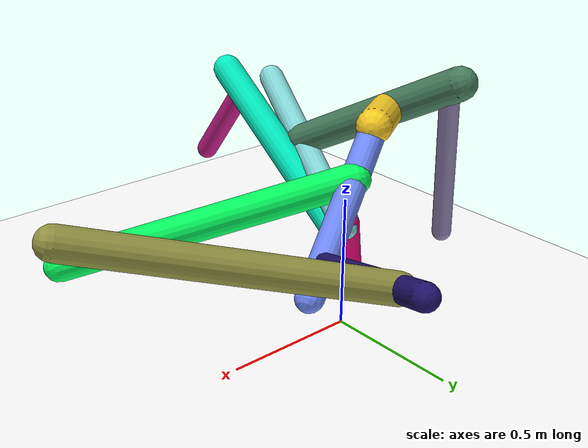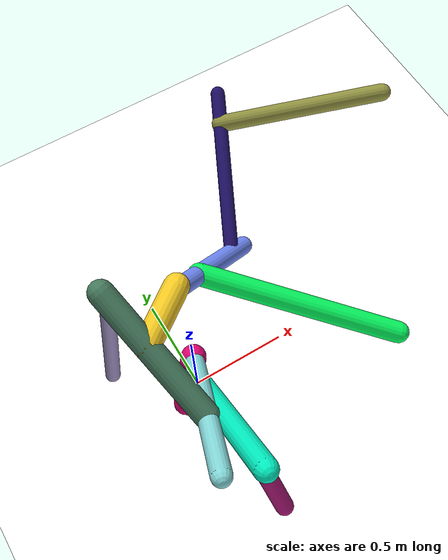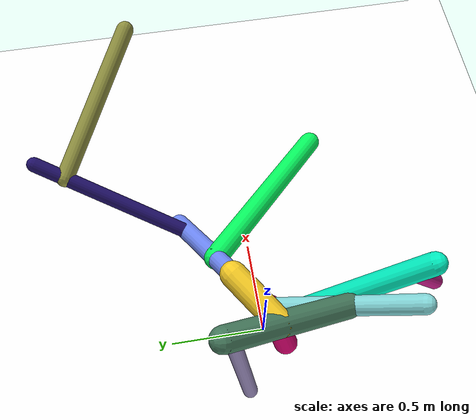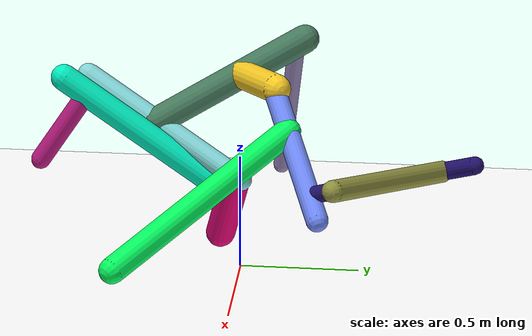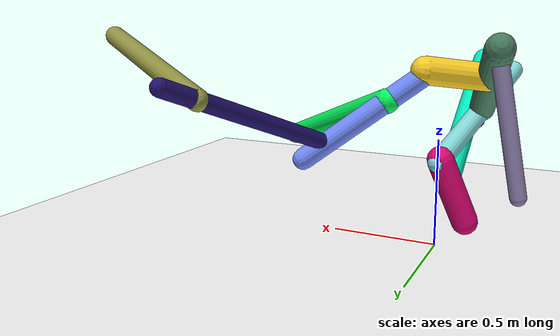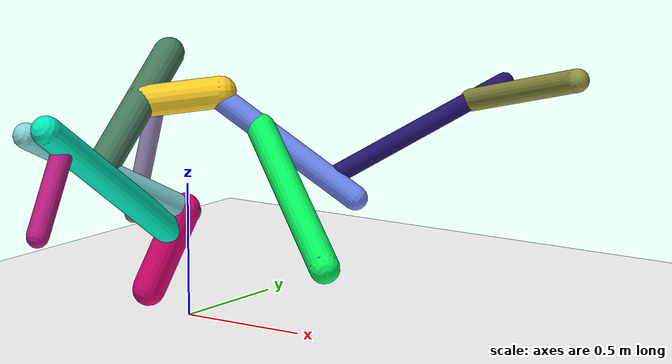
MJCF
<mujoco model="morphology">
  <option timestep="0.01"/>
  <default>
    <default class="/"/>
    <default class="0/"/>
    <default class="0/1/"/>
    <default class="0/1/2/"/>
    <default class="0/1/3/"/>
    <default class="0/1/3/4/"/>
    <default class="0/1/3/4/5/"/>
    <default class="0/1/3/4/6/"/>
    <default class="0/1/3/4/6/7/"/>
    <default class="0/8/"/>
    <default class="0/8/9/"/>
    <default class="0/8/9/10/"/>
  </default>
  <asset>
    <texture name="texplane" type="2d" builtin="checker" rgb1="0.10000000000000001 0.20000000000000001 0.29999999999999999" rgb2="0.20000000000000001 0.29999999999999999 0.40000000000000002" width="300" height="300"/>
    <material name="MatPlane" class="/" texture="texplane" texrepeat="20 20" specular="1" shininess="1" reflectance="0.5"/>
  </asset>
  <worldbody>
    <light name="//unnamed_light_0" class="/" directional="true" pos="0 0 1.5" dir="0 0 -1.3" cutoff="100" exponent="1" diffuse="1 1 1" specular="0.10000000000000001 0.10000000000000001 0.10000000000000001"/>
    <geom name="ground" class="/" type="plane" size="15 15 0.5" material="MatPlane" rgba="1 1 1 1"/>
    <site name="body" class="/" size="9.9999999999999995e-07 9.9999999999999995e-07 9.9999999999999995e-07" pos="0 0 0.39431885480880735"/>
    <body pos="0 0 0.39431885480880735" name="0/">
      <freejoint name="0/"/>
      <geom name="0/geom" class="0/" type="capsule" contype="1" conaffinity="1" condim="3" size="0.048144845808855898" rgba="0.521560113958908 0.85323047001364039 0.85963765033034167 1" friction="0.59999999999999998 0.10000000000000001 0.10000000000000001" fromto="0 0 0 -0.2148474989417537 -0.66537193604167966 0.3646495369491296"/>
      <site name="0/end0" class="0/" size="0.0050000000000000001" pos="-0.2148474989417537 -0.66537193604167966 0.3646495369491296"/>
      <site name="0/attach1" class="0/" size="9.9999999999999995e-07 9.9999999999999995e-07 9.9999999999999995e-07" pos="-0.1185783786043967 -0.36723129537607779 0.20125694300958238"/>
      <body pos="-0.1185783786043967 -0.36723129537607779 0.20125694300958238" name="0/1/">
        <joint name="0/1/joint/" class="0/" type="hinge" axis="0 1 0" limited="true" range="-64.494838794372072 64.494838794372072"/>
        <geom name="0/1/geom" class="0/1/" type="capsule" contype="1" conaffinity="1" condim="3" size="0.060547271633782186" rgba="0.28080544543162089 0.48780846590803084 0.37296056063426342 1" friction="0.59999999999999998 0.10000000000000001 0.10000000000000001" fromto="0 0 0 -0.15834655631524719 0.6118151905265754 0.3355734160686703"/>
        <site name="0/1/end1" class="0/1/" size="0.0050000000000000001" pos="-0.15834655631524719 0.6118151905265754 0.3355734160686703"/>
        <site name="0/1/attach2" class="0/1/" size="9.9999999999999995e-07 9.9999999999999995e-07 9.9999999999999995e-07" pos="-0.14972994242864782 0.57852254817678972 0.3173127944034016"/>
        <body pos="-0.14972994242864782 0.57852254817678972 0.3173127944034016" name="0/1/2/">
          <joint name="0/1/2/joint/" class="0/1/" type="hinge" axis="-2.7755575615628914e-17 -0.48090076370279511 0.87677503127659184" limited="true" range="-60.533056040704459 60.533056040704459"/>
          <geom name="0/1/2/geom" class="0/1/2/" type="capsule" contype="1" conaffinity="1" condim="3" size="0.035652709368419987" rgba="0.58534498643343291 0.52885439246457477 0.71528238490921636 1" friction="0.59999999999999998 0.10000000000000001 0.10000000000000001" fromto="0 0 0 -0.10319744016019361 -0.071536456643669033 -0.59678934007869688"/>
          <site name="0/1/2/end2" class="0/1/2/" size="0.0050000000000000001" pos="-0.10319744016019361 -0.071536456643669033 -0.59678934007869688"/>
        </body>
        <site name="0/1/attach3" class="0/1/" size="9.9999999999999995e-07 9.9999999999999995e-07 9.9999999999999995e-07" pos="-0.090885396012229544 0.35116056307914328 0.19260742715401291"/>
        <body pos="-0.090885396012229544 0.35116056307914328 0.19260742715401291" name="0/1/3/">
          <geom name="0/1/3/geom" class="0/1/3/" type="capsule" contype="1" conaffinity="1" condim="3" size="0.060675434854478377" rgba="0.98251592459301129 0.81032165568727654 0.1463014305549456 1" friction="0.59999999999999998 0.10000000000000001 0.10000000000000001" fromto="0 0 0 0.24507496823011121 0.17074535038058269 0.037540565493934142"/>
          <site name="0/1/3/end3" class="0/1/3/" size="0.0050000000000000001" pos="0.24507496823011121 0.17074535038058269 0.037540565493934142"/>
          <site name="0/1/3/attach4" class="0/1/3/" size="9.9999999999999995e-07 9.9999999999999995e-07 9.9999999999999995e-07" pos="0.22501210666266097 0.15676742210536634 0.034467337844011868"/>
          <body pos="0.22501210666266097 0.15676742210536634 0.034467337844011868" name="0/1/3/4/">
            <joint name="0/1/3/4/joint/" class="0/1/3/" type="hinge" axis="-0.58073214926858829 0.79510394860620204 0.17481384875550432" limited="true" range="-48.664991078502304 48.664991078502304"/>
            <geom name="0/1/3/4/geom" class="0/1/3/4/" type="capsule" contype="1" conaffinity="1" condim="3" size="0.046712522167608649" rgba="0.44215465504621398 0.54703035638102016 0.98304378934868364 1" friction="0.59999999999999998 0.10000000000000001 0.10000000000000001" fromto="0 0 0 0.48564637378873488 0.22468263861138205 -0.37940583931129002"/>
            <site name="0/1/3/4/end4" class="0/1/3/4/" size="0.0050000000000000001" pos="0.48564637378873488 0.22468263861138205 -0.37940583931129002"/>
            <site name="0/1/3/4/attach5" class="0/1/3/4/" size="9.9999999999999995e-07 9.9999999999999995e-07 9.9999999999999995e-07" pos="0.16226669520978201 0.07507213315329489 -0.12676905462722246"/>
            <body pos="0.16226669520978201 0.07507213315329489 -0.12676905462722246" name="0/1/3/4/5/">
              <joint name="0/1/3/4/5/joint/" class="0/1/3/4/" type="hinge" axis="-0.67221083332551712 0.3772502069917677 -0.63703600909562585" limited="true" range="-39.957802244503227 39.957802244503227"/>
              <geom name="0/1/3/4/5/geom" class="0/1/3/4/5/" type="capsule" contype="1" conaffinity="1" condim="3" size="0.054251618140067459" rgba="0.020631117865451687 0.98759511543195733 0.37680960475974745 1" friction="0.59999999999999998 0.10000000000000001 0.10000000000000001" fromto="0 0 0 0.74120422751525372 -0.63190035843120151 -0.32086703123922539"/>
              <site name="0/1/3/4/5/end5" class="0/1/3/4/5/" size="0.0050000000000000001" pos="0.74120422751525372 -0.63190035843120151 -0.32086703123922539"/>
            </body>
            <site name="0/1/3/4/attach6" class="0/1/3/4/" size="9.9999999999999995e-07 9.9999999999999995e-07 9.9999999999999995e-07" pos="0.39578828071016525 0.18311009829573455 -0.30920520143271363"/>
            <body pos="0.39578828071016525 0.18311009829573455 -0.30920520143271363" name="0/1/3/4/6/">
              <joint name="0/1/3/4/6/joint/" class="0/1/3/4/" type="hinge" axis="-0.67221083332551712 0.3772502069917677 -0.63703600909562585" limited="true" range="-32.068873865693497 32.068873865693497"/>
              <geom name="0/1/3/4/6/geom" class="0/1/3/4/6/" type="capsule" contype="1" conaffinity="1" condim="3" size="0.036002316280818784" rgba="0.1353361887572625 0.071053597662766643 0.42694930877268844 1" friction="0.59999999999999998 0.10000000000000001 0.10000000000000001" fromto="0 0 0 0.33253400746259953 0.68344245430624229 0.30175798885871741"/>
              <site name="0/1/3/4/6/end6" class="0/1/3/4/6/" size="0.0050000000000000001" pos="0.33253400746259953 0.68344245430624229 0.30175798885871741"/>
              <site name="0/1/3/4/6/attach7" class="0/1/3/4/6/" size="9.9999999999999995e-07 9.9999999999999995e-07 9.9999999999999995e-07" pos="0.26880820352726803 0.55246962486082141 0.24393000735191359"/>
              <body pos="0.26880820352726803 0.55246962486082141 0.24393000735191359" name="0/1/3/4/6/7/">
                <joint name="0/1/3/4/6/7/joint/" class="0/1/3/4/6/" type="hinge" axis="-2.7755575615628914e-17 -0.4039082643231397 0.91479949388457182" limited="true" range="-69.960770896614108 69.960770896614108"/>
                <geom name="0/1/3/4/6/7/geom" class="0/1/3/4/6/7/" type="capsule" contype="1" conaffinity="1" condim="3" size="0.043123666762176792" rgba="0.57350306620482505 0.57855531187880971 0.25798891405657542 1" friction="0.59999999999999998 0.10000000000000001 0.10000000000000001" fromto="0 0 0 0.69814031340054483 -0.37961095889477964 0.19729267100816217"/>
                <site name="0/1/3/4/6/7/end7" class="0/1/3/4/6/7/" size="0.0050000000000000001" pos="0.69814031340054483 -0.37961095889477964 0.19729267100816217"/>
              </body>
            </body>
          </body>
        </body>
      </body>
      <site name="0/attach8" class="0/" size="9.9999999999999995e-07 9.9999999999999995e-07 9.9999999999999995e-07" pos="-0.005957284455389936 -0.018449411378572363 0.010110990487820925"/>
      <body pos="-0.005957284455389936 -0.018449411378572363 0.010110990487820925" name="0/8/">
        <joint name="0/8/joint/" class="0/" type="hinge" axis="0 1 0" limited="true" range="-42.464729755728499 42.464729755728499"/>
        <geom name="0/8/geom" class="0/8/" type="capsule" contype="1" conaffinity="1" condim="3" size="0.061963874727102811" rgba="0.88906323335345439 0.020976022954794948 0.46125614650078661 1" friction="0.59999999999999998 0.10000000000000001 0.10000000000000001" fromto="0 0 0 -0.10854761853118244 -0.078382594222590196 -0.3044298558336776"/>
        <site name="0/8/end8" class="0/8/" size="0.0050000000000000001" pos="-0.10854761853118244 -0.078382594222590196 -0.3044298558336776"/>
        <site name="0/8/attach9" class="0/8/" size="9.9999999999999995e-07 9.9999999999999995e-07 9.9999999999999995e-07" pos="-0.032844519702037535 -0.023717136267721237 -0.092114894210648238"/>
        <body pos="-0.032844519702037535 -0.023717136267721237 -0.092114894210648238" name="0/8/9/">
          <joint name="0/8/9/joint/" class="0/8/" type="hinge" axis="0.94523567722291468 -0.081382153135574009 -0.31607983114389937" limited="true" range="-32.376057053157382 32.376057053157382"/>
          <geom name="0/8/9/geom" class="0/8/9/" type="capsule" contype="1" conaffinity="1" condim="3" size="0.055627756978727488" rgba="0.0013261852235814109 0.94282340399221964 0.76280556484502982 1" friction="0.59999999999999998 0.10000000000000001 0.10000000000000001" fromto="0 0 0 -0.013749006798498775 -0.70373684522619817 0.49339240971909337"/>
          <site name="0/8/9/end9" class="0/8/9/" size="0.0050000000000000001" pos="-0.013749006798498775 -0.70373684522619817 0.49339240971909337"/>
          <site name="0/8/9/attach10" class="0/8/9/" size="9.9999999999999995e-07 9.9999999999999995e-07 9.9999999999999995e-07" pos="-0.011877234451852211 -0.60793100371955811 0.42622259286669734"/>
          <body pos="-0.011877234451852211 -0.60793100371955811 0.42622259286669734" name="0/8/9/10/">
            <geom name="0/8/9/10/geom" class="0/8/9/10/" type="capsule" contype="1" conaffinity="1" condim="3" size="0.041280029229957382" rgba="0.73146312354275411 0.10726923745017736 0.50657124771055118 1" friction="0.59999999999999998 0.10000000000000001 0.10000000000000001" fromto="0 0 0 0.034645286369912598 -0.1957521555949473 -0.29167995016330761"/>
            <site name="0/8/9/10/end10" class="0/8/9/10/" size="0.0050000000000000001" pos="0.034645286369912598 -0.1957521555949473 -0.29167995016330761"/>
          </body>
        </body>
      </body>
      <camera name="0/iso" class="0/" mode="trackcom" pos="-2.2999999999999998 -2.2999999999999998 1" xyaxes="0.45000000000000001 -0.45000000000000001 0 0.29999999999999999 0.14999999999999999 0.93999999999999995"/>
    </body>
  </worldbody>
  <actuator>
    <motor name="0/1/motor" class="0/1/" ctrllimited="true" ctrlrange="-1 1" gear="66" joint="0/1/joint/"/>
    <motor name="0/1/2/motor" class="0/1/2/" ctrllimited="true" ctrlrange="-1 1" gear="99" joint="0/1/2/joint/"/>
    <motor name="0/1/3/4/motor" class="0/1/3/4/" ctrllimited="true" ctrlrange="-1 1" gear="98" joint="0/1/3/4/joint/"/>
    <motor name="0/1/3/4/5/motor" class="0/1/3/4/5/" ctrllimited="true" ctrlrange="-1 1" gear="77" joint="0/1/3/4/5/joint/"/>
    <motor name="0/1/3/4/6/motor" class="0/1/3/4/6/" ctrllimited="true" ctrlrange="-1 1" gear="65" joint="0/1/3/4/6/joint/"/>
    <motor name="0/1/3/4/6/7/motor" class="0/1/3/4/6/7/" ctrllimited="true" ctrlrange="-1 1" gear="67" joint="0/1/3/4/6/7/joint/"/>
    <motor name="0/8/motor" class="0/8/" ctrllimited="true" ctrlrange="-1 1" gear="59" joint="0/8/joint/"/>
    <motor name="0/8/9/motor" class="0/8/9/" ctrllimited="true" ctrlrange="-1 1" gear="95" joint="0/8/9/joint/"/>
  </actuator>
  <sensor>
    <subtreelinvel name="velocity" body="0/"/>
  </sensor>
</mujoco>
